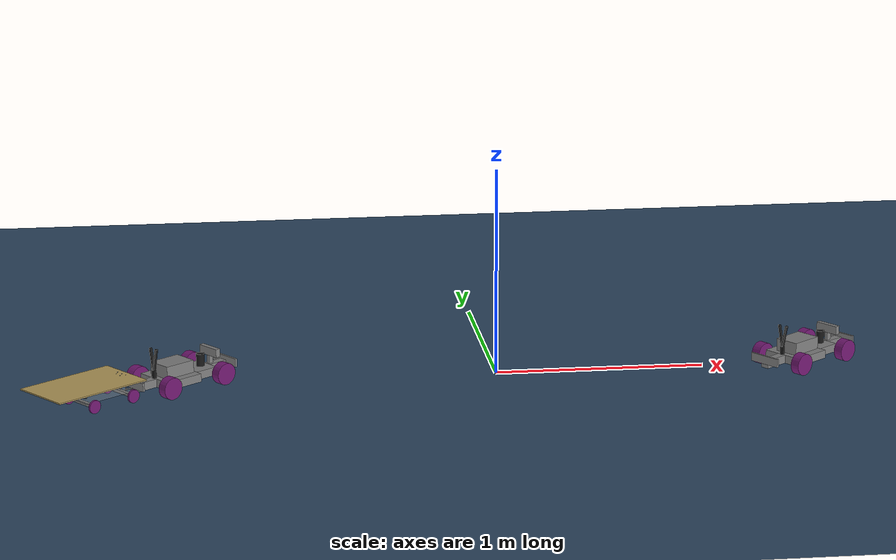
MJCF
<mujoco model="empty_checkerboard">
	<include file="common_assets.xml" />
	<default class="main">
		<default class="pole">
			<geom rgba="0.1 0.1 0.1 1" />
			<default class="pole_top">
				<geom type="cylinder" size="0.022 0.5" pos="0 0 0.5" />
			</default>
			<default class="pole_bottom1">
				<geom type="box" size="0.02 0.205 0.02" quat="0.7071 0 0 0.7071" pos="0 0 0.02" />
				<default class="pole_bottom2">
					<geom quat="1 0 0 0" />
				</default>
			</default>
		</default>
		<default class="landing_zone">
			<geom type="box" pos="0 0 0.01" size="0.1175 0.0975 0.01" rgba="0.8 0.8 0.8 1.0" />
		</default>
	</default>
	<compiler angle="radian" meshdir="" />
	<option timestep="0.001" integrator="implicitfast" />
	<visual>
		<quality shadowsize="4096" />
		<global offwidth="1920" offheight="1200" />
	</visual>
	<asset>
		<mesh file="meshes/crazyflie/cf2_assembly.stl" name="crazyflie" smoothnormal="true" scale="1.5 1.5 1.5" />
		<mesh file="meshes/building/lagyi_cockpit.stl" name="cockpit" smoothnormal="true" scale="0.0085 0.0085 0.0085" />
		<mesh file="meshes/building/lagyi_fal1.stl" name="fal1" smoothnormal="true" scale="0.0085 0.0085 0.0085" />
		<mesh file="meshes/building/lagyi_fal2.stl" name="fal2" smoothnormal="true" scale="0.0085 0.0085 0.0085" />
		<mesh file="meshes/building/lagyi_oszlop1.stl" name="oszlop1" smoothnormal="true" scale="0.0085 0.0085 0.0085" />
		<mesh file="meshes/building/lagyi_oszlop2.stl" name="oszlop2" smoothnormal="true" scale="0.0085 0.0085 0.0085" />
		<mesh file="meshes/building/lagyi_oszlop3.stl" name="oszlop3" smoothnormal="true" scale="0.0085 0.0085 0.0085" />
		<mesh file="meshes/building/lagyi_oszlop4.stl" name="oszlop4" smoothnormal="true" scale="0.0085 0.0085 0.0085" />
		<mesh file="meshes/bucket/Bucket3.obj" name="bucket" smoothnormal="false" scale="0.035 0.035 0.035" />
		<texture type="skybox" builtin="gradient" rgb1=".3 .5 .7" rgb2="0 0 0" width="512" height="512" />
		<texture name="tex-carpet" type="2d" file="textures/carpet_lagyi4.png" />
		<texture name="tex-roundabout" type="2d" file="textures/roundabout.png" />
		<texture name="tex-hospital" type="2d" file="textures/hospital.png" />
		<texture name="tex-post_office" type="2d" file="textures/post_office.png" />
		<texture name="tex-airport" type="2d" file="textures/airport.png" />
		<texture name="tex-parking_lot" type="2d" file="textures/parking_lot.png" />
		<texture name="tex-sztaki" type="2d" file="textures/sztaki.png" />
		<material name="mat-carpet" shininess="0.1" texture="tex-carpet" texuniform="false" />
		<material name="mat-roundabout" reflectance="0.7" texture="tex-roundabout" texuniform="false" />
		<material name="mat-hospital" reflectance="0.7" texrepeat="7.843 7.692" texture="tex-hospital" texuniform="true" />
		<material name="mat-post_office" reflectance="0.7" texrepeat="7.843 7.843" texture="tex-post_office" texuniform="true" />
		<material name="mat-airport" reflectance="0.7" texrepeat="9.524 9.524" texture="tex-airport" texuniform="true" />
		<material name="mat-parking_lot" reflectance="0.7" texrepeat="9.524 8.696" texture="tex-parking_lot" texuniform="true" />
		<material name="mat-sztaki" reflectance="0.7" texrepeat="9.524 9.524" texture="tex-sztaki" texuniform="true" />
		<texture name="grid" type="2d" builtin="checker" width="100" height="100" rgb1=".1 .2 .3" rgb2=".25 .35 .45" />
		<material name="grid" texture="grid" texrepeat="1 1" texuniform="true" reflectance=".05" />
	</asset>
	<worldbody>
		<light dir="0 -0.3 -1" diffuse=".9 .9 .9" specular="0.6 0.9 0.6" pos="1 1 15" cutoff="70" />
		<light dir="-.2 1 -.4" diffuse=".9 .9 .9" specular="0.6 0.9 0.6" pos="2 -5 6" cutoff="70" />
		<light dir="-1.0 -1.0 -.4" diffuse=".9 .9 .9" specular="0.6 0.9 0.6" pos="10 10 6" directional="true" cutoff="70" />
		<camera pos="2.867 -5.173 1.776" xyaxes="0.875 0.485 0.000 -0.139 0.252 0.958" />
		<geom name="ground" size="20 20 .005" type="plane" material="grid" condim="3" />
		<body name="Car_0" pos="1.5 0 0.05" quat="0.948 0 0 0.3165">
			<inertial pos="0 0 0" diaginertia=".05 .05 .08" mass="3.0" />
			<joint name="Car_0" type="free" />
			<site name="Car_0_cog" pos="0 0 0" />
			<geom name="Car_0_chassis_b" type="box" size=".10113 .1016 .02" pos="-.06 0 0" rgba="0.5 0.5 0.5 1" />
			<geom name="Car_0_chassis_f" type="box" size=".06 .07 .02" pos=".10113 0 0" rgba="0.5 0.5 0.5 1" />
			<geom name="Car_0_front" type="box" size=".052388 .02 .02" pos=".2135 0 0" rgba="0.5 0.5 0.5 1" />
			<geom name="Car_0_back" type="box" size=".062488 .02 .02" pos="-.2236 0 0" rgba="0.5 0.5 0.5 1" />
			<geom name="Car_0_front_bumper" type="box" size=".005 .09 .02" pos=".265888 0 0.02" rgba="0.5 0.5 0.5 1" />
			<geom name="Car_0_back_bumper" type="box" size=".005 .08 .02" pos="-.2861 0 0.02" rgba="0.5 0.5 0.5 1" />
			<geom name="Car_0_number" type="cylinder" size=".01984 .03" pos=".12 0 .05" rgba="0.1 0.1 0.1 1.0" />
			<geom name="Car_0_camera" type="box" size=".012 .06 0.02" pos=".18 0 .08" />
			<geom name="Car_0_camera_holder" type="box" size=".012 .008 .02" pos=".18 0 .04" />
			<geom name="Car_0_circuits" type="box" size=".08 .06 .03" pos="-.05 0 .05" rgba="0.5 0.5 0.5 1" />
			<geom name="Car_0_antennal" type="box" size=".007 .004 .06" pos="-.16 -.01 .105" euler="0.2 0 0" rgba=".1 .1 .1 1.0" />
			<geom name="Car_0_antennar" type="box" size=".007 .004 .06" pos="-.16 .01 .105" euler="-0.2 0 0" rgba=".1 .1 .1 1.0" />
			<geom name="Car_0_antenna_holder" type="box" size=".008 .008 .02" pos="-.16 0 .04" rgba=".1 .1 .1 1.0" />
			<body name="Car_0_wheelfr">
				<joint name="Car_0_wheelfr_steer" type="hinge" pos="0.16113 0.10016 0" limited="true" frictionloss="0.2" damping="0.2" armature="0.001" range="-0.6 0.6" axis="0 0 1" />
				<joint name="Car_0_wheelfr" type="hinge" pos="0.16113 0.122385 0" axis="0 1 0" frictionloss="0.01" damping="0.00001" armature="0.05" limited="false" />
				<geom name="Car_0_wheelfr" type="cylinder" size=".052388 .022225" pos="0.16113 0.122385 0" mass="0.1" material="material_check" euler="1.571 0 0" />
			</body>
			<body name="Car_0_wheelrl">
				<joint name="Car_0_wheelrl" type="hinge" pos="-0.16113 0.122385 0" axis="0 1 0" frictionloss="0.01" damping="0.00001" armature="0.05" limited="false" />
				<geom name="Car_0_wheelrl" type="cylinder" size=".052388 .022225" pos="-0.16113 0.122385 0" mass="0.1" material="material_check" euler="1.571 0 0" />
			</body>
			<body name="Car_0_wheelfl">
				<joint name="Car_0_wheelfl_steer" type="hinge" pos="0.16113 -0.10016 0" limited="true" frictionloss="0.2" damping="0.2" armature="0.001" range="-0.6 0.6" axis="0 0 1" />
				<joint name="Car_0_wheelfl" type="hinge" pos="0.16113 -0.122385 0" axis="0 1 0" frictionloss="0.01" damping="0.00001" armature="0.05" limited="false" />
				<geom name="Car_0_wheelfl" type="cylinder" size=".052388 .022225" pos="0.16113 -0.122385 0" mass="0.1" material="material_check" euler="1.571 0 0" />
			</body>
			<body name="Car_0_wheelrr">
				<joint name="Car_0_wheelrr" type="hinge" pos="-0.16113 -0.122385 0" axis="0 1 0" frictionloss="0.01" damping="0.00001" armature="0.05" limited="false" />
				<geom name="Car_0_wheelrr" type="cylinder" size=".052388 .022225" pos="-0.16113 -0.122385 0" mass="0.1" material="material_check" euler="1.571 0 0" />
			</body>
		</body>
		<body name="Car_1" pos="-1.5 0 0.05" quat="0.948 0 0 0.3165">
			<inertial pos="0 0 0" diaginertia=".05 .05 .08" mass="3.0" />
			<joint name="Car_1" type="free" />
			<site name="Car_1_cog" pos="0 0 0" />
			<geom name="Car_1_chassis_b" type="box" size=".10113 .1016 .02" pos="-.06 0 0" rgba="0.5 0.5 0.5 1" />
			<geom name="Car_1_chassis_f" type="box" size=".06 .07 .02" pos=".10113 0 0" rgba="0.5 0.5 0.5 1" />
			<geom name="Car_1_front" type="box" size=".052388 .02 .02" pos=".2135 0 0" rgba="0.5 0.5 0.5 1" />
			<geom name="Car_1_back" type="box" size=".062488 .02 .02" pos="-.2236 0 0" rgba="0.5 0.5 0.5 1" />
			<geom name="Car_1_front_bumper" type="box" size=".005 .09 .02" pos=".265888 0 0.02" rgba="0.5 0.5 0.5 1" />
			<geom name="Car_1_back_bumper" type="box" size=".005 .08 .02" pos="-.2861 0 0.02" rgba="0.5 0.5 0.5 1" />
			<geom name="Car_1_number" type="cylinder" size=".01984 .03" pos=".12 0 .05" rgba="0.1 0.1 0.1 1.0" />
			<geom name="Car_1_camera" type="box" size=".012 .06 0.02" pos=".18 0 .08" />
			<geom name="Car_1_camera_holder" type="box" size=".012 .008 .02" pos=".18 0 .04" />
			<geom name="Car_1_circuits" type="box" size=".08 .06 .03" pos="-.05 0 .05" rgba="0.5 0.5 0.5 1" />
			<geom name="Car_1_antennal" type="box" size=".007 .004 .06" pos="-.16 -.01 .105" euler="0.2 0 0" rgba=".1 .1 .1 1.0" />
			<geom name="Car_1_antennar" type="box" size=".007 .004 .06" pos="-.16 .01 .105" euler="-0.2 0 0" rgba=".1 .1 .1 1.0" />
			<geom name="Car_1_antenna_holder" type="box" size=".008 .008 .02" pos="-.16 0 .04" rgba=".1 .1 .1 1.0" />
			<body name="Car_1_wheelfr">
				<joint name="Car_1_wheelfr_steer" type="hinge" pos="0.16113 0.10016 0" limited="true" frictionloss="0.2" damping="0.2" armature="0.001" range="-0.6 0.6" axis="0 0 1" />
				<joint name="Car_1_wheelfr" type="hinge" pos="0.16113 0.122385 0" axis="0 1 0" frictionloss="0.01" damping="0.00001" armature="0.05" limited="false" />
				<geom name="Car_1_wheelfr" type="cylinder" size=".052388 .022225" pos="0.16113 0.122385 0" mass="0.1" material="material_check" euler="1.571 0 0" />
			</body>
			<body name="Car_1_wheelrl">
				<joint name="Car_1_wheelrl" type="hinge" pos="-0.16113 0.122385 0" axis="0 1 0" frictionloss="0.01" damping="0.00001" armature="0.05" limited="false" />
				<geom name="Car_1_wheelrl" type="cylinder" size=".052388 .022225" pos="-0.16113 0.122385 0" mass="0.1" material="material_check" euler="1.571 0 0" />
			</body>
			<body name="Car_1_wheelfl">
				<joint name="Car_1_wheelfl_steer" type="hinge" pos="0.16113 -0.10016 0" limited="true" frictionloss="0.2" damping="0.2" armature="0.001" range="-0.6 0.6" axis="0 0 1" />
				<joint name="Car_1_wheelfl" type="hinge" pos="0.16113 -0.122385 0" axis="0 1 0" frictionloss="0.01" damping="0.00001" armature="0.05" limited="false" />
				<geom name="Car_1_wheelfl" type="cylinder" size=".052388 .022225" pos="0.16113 -0.122385 0" mass="0.1" material="material_check" euler="1.571 0 0" />
			</body>
			<body name="Car_1_wheelrr">
				<joint name="Car_1_wheelrr" type="hinge" pos="-0.16113 -0.122385 0" axis="0 1 0" frictionloss="0.01" damping="0.00001" armature="0.05" limited="false" />
				<geom name="Car_1_wheelrr" type="cylinder" size=".052388 .022225" pos="-0.16113 -0.122385 0" mass="0.1" material="material_check" euler="1.571 0 0" />
			</body>
			<body name="Car_1_trailer" pos="-0.18 0 0">
				<joint type="ball" name="car_to_rod" />
				<geom type="cylinder" size="0.0025 0.09" euler="0 1.571 0" pos="-0.09 0 0" mass="0.1" />
				<body name="Car_1_trailer_front_structure" pos="-0.18 0 0">
					<joint type="hinge" axis="0 1 0" name="rod_to_front" />
					<geom type="box" size="0.0075 0.0965 0.0075" mass="0.3" />
					<body pos="0 0.0965 0" name="Car_1_trailer_wheelfl">
						<geom type="cylinder" size=".0315 .005" material="material_check" euler="1.571 0 0" mass="0.1" name="Car_1_trailer_wheelfl" />
						<joint type="hinge" axis="0 1 0" frictionloss="0.001" damping="0.00001" armature="0.00005" />
					</body>
					<body pos="0 -0.0965 0" name="Car_1_trailer_wheelfr">
						<geom type="cylinder" size=".0315 .005" material="material_check" euler="1.571 0 0" mass="0.1" name="Car_1_trailer_wheelfr" />
						<joint type="hinge" axis="0 1 0" frictionloss="0.001" damping="0.00001" armature="0.00005" />
					</body>
					<body name="Car_1_trailer_rear_structure">
						<geom type="box" size=".25 .1475 .003" pos="-.21 0 .08" rgba="0.7 0.6 0.35 1.0" euler="0 0.0 0" mass="1.5" />
						<geom type="box" size="0.0075 0.0965 0.0075" pos="-0.225 0 0" mass="0.3" />
						<geom type="box" size="0.1375 0.07150000000000001 0.0025" pos="-0.1125 0 0.014" rgba="0.9 0.9 0.9 0.2" euler="0 0.0 0" mass="1.11" />
						<geom type="cylinder" size="0.0025 0.035" pos=".01 0 0.05" euler="0 0.0 0" mass="0.005" />
						<geom type="cylinder" size="0.0025 0.035" pos=".01 -0.03 0.05" euler="0 0.0 0" mass="0.005" />
						<geom type="cylinder" size="0.0025 0.035" pos=".01 0.03 0.05" euler="0 0.0 0" mass="0.005" />
						<geom type="cylinder" size="0.0025 0.035" pos="-.01 -0.015 0.05" euler="0 0.0 0" mass="0.005" />
						<geom type="cylinder" size="0.0025 0.035" pos="-.01 0.015 0.05" euler="0 0.0 0" mass="0.005" />
						<geom type="cylinder" size="0.008 0.032" pos="-0.20500000000000002 0 0.045" rgba="0.1 0.1 0.1 1.0" euler="0 0.0 0" mass="0.005" />
						<joint type="hinge" axis="0 0 1" name="front_to_rear" />
						<body pos="-0.225 0.0965 0" name="Car_1_trailer_wheelrl">
							<geom type="cylinder" size=".0315 .005" material="material_check" euler="1.571 0 0" mass="0.1" name="Car_1_trailer_wheelrl" />
							<joint type="hinge" axis="0 1 0" frictionloss="0.001" damping="0.00001" armature="0.00005" />
						</body>
						<body pos="-0.225 -0.0965 0" name="Car_1_trailer_wheelrr">
							<geom type="cylinder" size=".0315 .005" material="material_check" euler="1.571 0 0" mass="0.1" name="Car_1_trailer_wheelrr" />
							<joint type="hinge" axis="0 1 0" frictionloss="0.001" damping="0.00001" armature="0.00005" />
						</body>
					</body>
				</body>
			</body>
		</body>
	</worldbody>
	<actuator>
		<position forcelimited="true" forcerange="-5 5" name="Car_0_wheelfr_actr_steer" joint="Car_0_wheelfr_steer" kp="15" />
		<motor name="Car_0_wheelfr_actr" joint="Car_0_wheelfr" />
		<motor name="Car_0_wheelrl_actr" joint="Car_0_wheelrl" />
		<position forcelimited="true" forcerange="-5 5" name="Car_0_wheelfl_actr_steer" joint="Car_0_wheelfl_steer" kp="15" />
		<motor name="Car_0_wheelfl_actr" joint="Car_0_wheelfl" />
		<motor name="Car_0_wheelrr_actr" joint="Car_0_wheelrr" />
		<position forcelimited="true" forcerange="-5 5" name="Car_1_wheelfr_actr_steer" joint="Car_1_wheelfr_steer" kp="15" />
		<motor name="Car_1_wheelfr_actr" joint="Car_1_wheelfr" />
		<motor name="Car_1_wheelrl_actr" joint="Car_1_wheelrl" />
		<position forcelimited="true" forcerange="-5 5" name="Car_1_wheelfl_actr_steer" joint="Car_1_wheelfl_steer" kp="15" />
		<motor name="Car_1_wheelfl_actr" joint="Car_1_wheelfl" />
		<motor name="Car_1_wheelrr_actr" joint="Car_1_wheelrr" />
	</actuator>
	<sensor>
		<gyro site="Car_0_cog" name="Car_0_gyro" />
		<velocimeter site="Car_0_cog" name="Car_0_velocimeter" />
		<framepos objtype="site" objname="Car_0_cog" name="Car_0_posimeter" />
		<framequat objtype="site" objname="Car_0_cog" name="Car_0_orimeter" />
		<gyro site="Car_1_cog" name="Car_1_gyro" />
		<velocimeter site="Car_1_cog" name="Car_1_velocimeter" />
		<framepos objtype="site" objname="Car_1_cog" name="Car_1_posimeter" />
		<framequat objtype="site" objname="Car_1_cog" name="Car_1_orimeter" />
	</sensor>
	<contact>
		<pair geom1="Car_0_wheelfr" geom2="ground" condim="6" friction="2.5 2.5 .009 .0001 .0001" />
		<pair geom1="Car_0_wheelrl" geom2="ground" condim="6" friction="2.5 2.5 .009 .0001 .0001" />
		<pair geom1="Car_0_wheelfl" geom2="ground" condim="6" friction="2.5 2.5 .009 .0001 .0001" />
		<pair geom1="Car_0_wheelrr" geom2="ground" condim="6" friction="2.5 2.5 .009 .0001 .0001" />
		<pair geom1="Car_1_wheelfr" geom2="ground" condim="6" friction="2.5 2.5 .009 .0001 .0001" />
		<pair geom1="Car_1_wheelrl" geom2="ground" condim="6" friction="2.5 2.5 .009 .0001 .0001" />
		<pair geom1="Car_1_wheelfl" geom2="ground" condim="6" friction="2.5 2.5 .009 .0001 .0001" />
		<pair geom1="Car_1_wheelrr" geom2="ground" condim="6" friction="2.5 2.5 .009 .0001 .0001" />
		<pair geom1="Car_1_trailer_wheelfl" geom2="ground" condim="6" friction="2.5 2.5 .009 .0001 .0001" />
		<pair geom1="Car_1_trailer_wheelfr" geom2="ground" condim="6" friction="2.5 2.5 .009 .0001 .0001" />
		<pair geom1="Car_1_trailer_wheelrl" geom2="ground" condim="6" friction="2.5 2.5 .009 .0001 .0001" />
		<pair geom1="Car_1_trailer_wheelrr" geom2="ground" condim="6" friction="2.5 2.5 .009 .0001 .0001" />
	</contact>
</mujoco>

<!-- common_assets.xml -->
<mujoco>
  <asset>
    <mesh file="meshes/payload/payload_simplified.stl" name="payload_simplified" smoothnormal="false" scale="0.00115 0.00115 0.00115"/>

    <mesh file="meshes/crazyflie/cf_body.stl" name="crazyflie_body" smoothnormal="true" scale="1.0452 1.0452 1.0452"/>
    <mesh file="meshes/crazyflie/4_motormounts.stl" name="crazyflie_4_motormounts" smoothnormal="true" scale="1.0452 1.0452 1.0452"/>
    <mesh file="meshes/crazyflie/4_motors.stl" name="crazyflie_4_motors" smoothnormal="true" scale="1.0452 1.0452 1.0452"/>
    <mesh file="meshes/crazyflie/ccw_prop.stl" name="crazyflie_ccw_prop" smoothnormal="true" scale="1.0452 1.0452 1.0452"/>
    <mesh file="meshes/crazyflie/cw_prop.stl" name="crazyflie_cw_prop" smoothnormal="true" scale="1.0452 1.0452 1.0452"/>

    <mesh file="meshes/bumblebee/quad_model_no_prop_simplified.stl" name="bumblebee_body" smoothnormal="true" scale="0.001 0.001 0.001"/>
    <mesh file="meshes/bumblebee/ccw_propeller_simplified.stl" name="bumblebee_ccw_prop" smoothnormal="true" scale="0.001 0.001 0.001"/>
    <mesh file="meshes/bumblebee/cw_propeller_simplified.stl" name="bumblebee_cw_prop" smoothnormal="true" scale="0.001 0.001 0.001"/>

    <mesh file="meshes/airplane/WWII_plane.stl" name="airplane_mesh" smoothnormal="true" scale="1.0 1.0 1.0"/>

    <texture name="tex_check" builtin="checker" type="2d" width="256" height="256" rgb1=".8 .1 .1" rgb2=".1 .1 .8"/>
    <material name="material_check" texture="tex_check" texrepeat="2 2" texuniform="true"/>
  </asset>
</mujoco>
